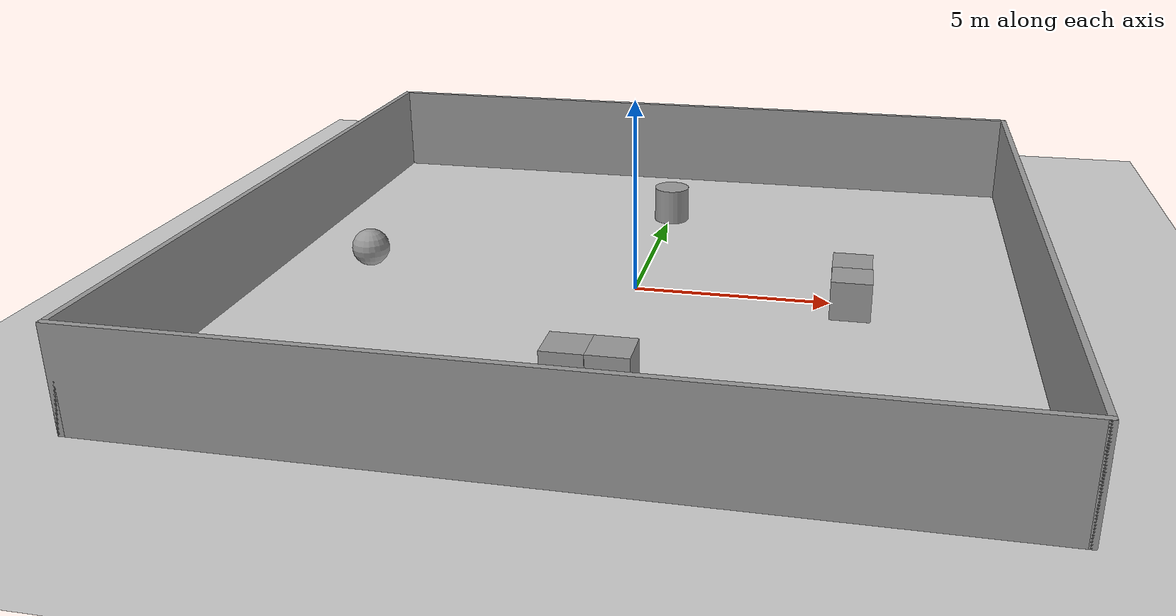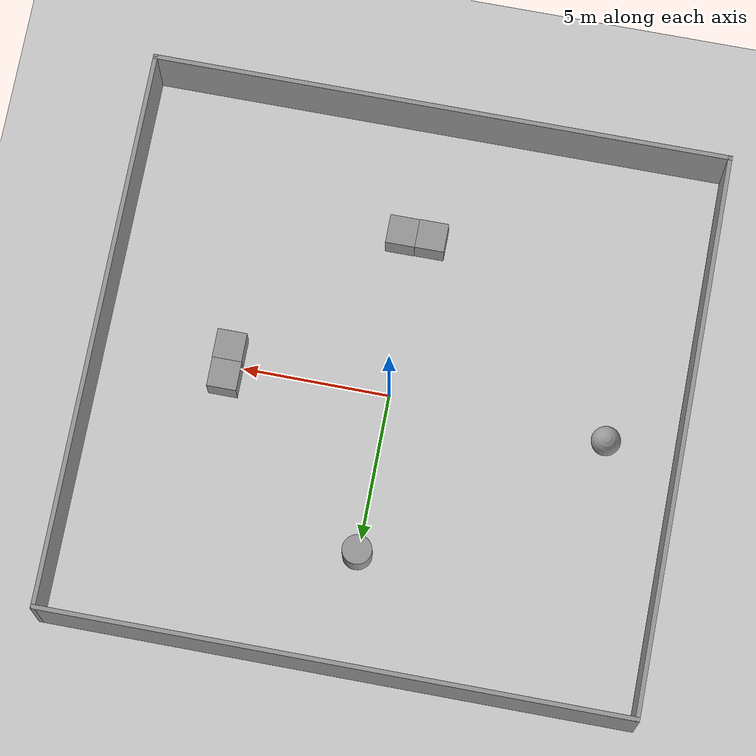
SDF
<sdf version="1.7">
 <world name="default">
  <light name="sun" type="directional">
   <pose>0 0 10 0 -0 0</pose>
   <diffuse>0.8 0.8 0.8 1</diffuse>
   <specular>0.2 0.2 0.2 1</specular>
   <attenuation>
    <range>1000</range>
    <constant>0.9</constant>
    <linear>0.01</linear>
    <quadratic>0.001</quadratic>
   </attenuation>
   <direction>-0.5 0.1 -0.9</direction>
   <spot><inner_angle>0</inner_angle><outer_angle>0</outer_angle><falloff>0</falloff></spot>
  </light>
  <model name="ground_plane">
   <static>1</static>
   <link name="link">
    <collision name="collision">
     <geometry><plane><normal>0 0 1</normal><size>100 100</size></plane></geometry>
     <surface>
      <contact><collide_bitmask>65535</collide_bitmask></contact>
      <friction><ode><mu>100</mu><mu2>50</mu2></ode></friction>
     </surface>
    </collision>
    <visual name="visual">
     <cast_shadows>0</cast_shadows>
     <geometry><plane><normal>0 0 1</normal><size>100 100</size></plane></geometry>
     <material>
      <script><uri>file://media/materials/scripts/gazebo.material</uri><name>Gazebo/Grey</name></script>
     </material>
    </visual>
   </link>
  </model>
  <gravity>0 0 -9.8</gravity>
  <magnetic_field>6e-06 2.3e-05 -4.2e-05</magnetic_field>
  <atmosphere type="adiabatic"/>
  <physics type="ode">
   <max_step_size>0.001</max_step_size>
   <real_time_factor>1</real_time_factor>
   <real_time_update_rate>1000</real_time_update_rate>
  </physics>
  <scene><ambient>0.4 0.4 0.4 1</ambient><background>0.7 0.7 0.7 1</background><shadows>1</shadows></scene>
  <audio><device>default</device></audio>
  <spherical_coordinates>
   <surface_model>EARTH_WGS84</surface_model>
   <latitude_deg>0</latitude_deg>
   <longitude_deg>0</longitude_deg>
   <elevation>0</elevation>
   <heading_deg>0</heading_deg>
  </spherical_coordinates>
  <model name="Untitled">
   <pose>0.009523 0.020676 0 0 -0 0</pose>
   <static>1</static>
   <link name="Wall_0">
    <collision name="Wall_0_Collision">
     <geometry><box><size>19.75 0.15 2.5</size></box></geometry>
     <pose>0 0 1.25 0 -0 0</pose>
    </collision>
    <visual name="Wall_0_Visual">
     <pose>0 0 1.25 0 -0 0</pose>
     <geometry><box><size>19.75 0.15 2.5</size></box></geometry>
     <material>
      <script><uri>file://media/materials/scripts/gazebo.material</uri><name>Gazebo/Grey</name></script>
      <ambient>1 1 1 1</ambient>
     </material>
     <meta><layer>0</layer></meta>
    </visual>
    <pose>-0 9.55 0 0 -0 3.14159</pose>
   </link>
   <link name="Wall_2">
    <collision name="Wall_2_Collision">
     <geometry><box><size>19.25 0.15 2.5</size></box></geometry>
     <pose>0 0 1.25 0 -0 0</pose>
    </collision>
    <visual name="Wall_2_Visual">
     <pose>0 0 1.25 0 -0 0</pose>
     <geometry><box><size>19.25 0.15 2.5</size></box></geometry>
     <material>
      <script><uri>file://media/materials/scripts/gazebo.material</uri><name>Gazebo/Grey</name></script>
      <ambient>1 1 1 1</ambient>
     </material>
     <meta><layer>0</layer></meta>
    </visual>
    <pose>-9.8 -0 0 0 -0 -1.5708</pose>
   </link>
   <link name="Wall_3">
    <collision name="Wall_3_Collision">
     <geometry><box><size>19.75 0.15 2.5</size></box></geometry>
     <pose>0 0 1.25 0 -0 0</pose>
    </collision>
    <visual name="Wall_3_Visual">
     <pose>0 0 1.25 0 -0 0</pose>
     <geometry><box><size>19.75 0.15 2.5</size></box></geometry>
     <material>
      <script><uri>file://media/materials/scripts/gazebo.material</uri><name>Gazebo/Grey</name></script>
      <ambient>1 1 1 1</ambient>
     </material>
     <meta><layer>0</layer></meta>
    </visual>
    <pose>-0 -9.55 0 0 -0 0</pose>
   </link>
   <link name="Wall_4">
    <collision name="Wall_4_Collision">
     <geometry><box><size>19.25 0.15 2.5</size></box></geometry>
     <pose>0 0 1.25 0 -0 0</pose>
    </collision>
    <visual name="Wall_4_Visual">
     <pose>0 0 1.25 0 -0 0</pose>
     <geometry><box><size>19.25 0.15 2.5</size></box></geometry>
     <material>
      <script><uri>file://media/materials/scripts/gazebo.material</uri><name>Gazebo/Grey</name></script>
      <ambient>1 1 1 1</ambient>
     </material>
     <meta><layer>0</layer></meta>
    </visual>
    <pose>9.8 -0 0 0 -0 1.5708</pose>
   </link>
   <static>1</static>
  </model>
  <model name="unit_box">
   <pose>5.49464 0.513816 0.499995 1e-05 -0 0.000278</pose>
   <static>1</static>
   <link name="link">
    <inertial>
     <mass>1</mass>
     <inertia>
      <ixx>0.166667</ixx>
      <ixy>0</ixy>
      <ixz>0</ixz>
      <iyy>0.166667</iyy>
      <iyz>0</iyz>
      <izz>0.166667</izz>
     </inertia>
    </inertial>
    <collision name="collision"><geometry><box><size>1 1 1</size></box></geometry></collision>
    <visual name="visual">
     <geometry><box><size>1 1 1</size></box></geometry>
     <material>
      <script><name>Gazebo/Grey</name><uri>file://media/materials/scripts/gazebo.material</uri></script>
     </material>
    </visual>
   </link>
  </model>
  <model name="unit_box_0">
   <pose>5.50891 -0.486179 0.5 0 -0 0.000271</pose>
   <static>1</static>
   <link name="link">
    <inertial>
     <mass>1</mass>
     <inertia>
      <ixx>0.166667</ixx>
      <ixy>0</ixy>
      <ixz>0</ixz>
      <iyy>0.166667</iyy>
      <iyz>0</iyz>
      <izz>0.166667</izz>
     </inertia>
    </inertial>
    <collision name="collision"><geometry><box><size>1 1 1</size></box></geometry></collision>
    <visual name="visual">
     <geometry><box><size>1 1 1</size></box></geometry>
     <material>
      <script><name>Gazebo/Grey</name><uri>file://media/materials/scripts/gazebo.material</uri></script>
     </material>
    </visual>
   </link>
  </model>
  <model name="unit_box_1">
   <pose>0.573324 -5.48013 0.499995 -1e-05 0 0.00048</pose>
   <static>1</static>
   <link name="link">
    <inertial>
     <mass>1</mass>
     <inertia>
      <ixx>0.166667</ixx>
      <ixy>0</ixy>
      <ixz>0</ixz>
      <iyy>0.166667</iyy>
      <iyz>0</iyz>
      <izz>0.166667</izz>
     </inertia>
    </inertial>
    <collision name="collision"><geometry><box><size>1 1 1</size></box></geometry></collision>
    <visual name="visual">
     <geometry><box><size>1 1 1</size></box></geometry>
     <material>
      <script><name>Gazebo/Grey</name><uri>file://media/materials/scripts/gazebo.material</uri></script>
     </material>
    </visual>
   </link>
  </model>
  <model name="unit_box_2">
   <pose>-0.42668 -5.49054 0.499995 1e-05 -0 0.000484</pose>
   <static>1</static>
   <link name="link">
    <inertial>
     <mass>1</mass>
     <inertia>
      <ixx>0.166667</ixx>
      <ixy>0</ixy>
      <ixz>0</ixz>
      <iyy>0.166667</iyy>
      <iyz>0</iyz>
      <izz>0.166667</izz>
     </inertia>
    </inertial>
    <collision name="collision"><geometry><box><size>1 1 1</size></box></geometry></collision>
    <visual name="visual">
     <geometry><box><size>1 1 1</size></box></geometry>
     <material>
      <script><name>Gazebo/Grey</name><uri>file://media/materials/scripts/gazebo.material</uri></script>
     </material>
    </visual>
   </link>
  </model>
  <model name="unit_cylinder">
   <pose>0.037917 5.54107 0.499993 -3e-06 -4e-06 -0</pose>
   <static>1</static>
   <link name="link">
    <inertial>
     <mass>1</mass>
     <inertia><ixx>0.145833</ixx><ixy>0</ixy><ixz>0</ixz><iyy>0.145833</iyy><iyz>0</iyz><izz>0.125</izz></inertia>
    </inertial>
    <collision name="collision">
     <geometry><cylinder><radius>0.5</radius><length>1</length></cylinder></geometry>
    </collision>
    <visual name="visual">
     <geometry><cylinder><radius>0.5</radius><length>1</length></cylinder></geometry>
     <material>
      <script><name>Gazebo/Grey</name><uri>file://media/materials/scripts/gazebo.material</uri></script>
     </material>
    </visual>
   </link>
  </model>
  <model name="unit_sphere">
   <pose>-7.38105 0.321849 0.5 0 -0 0</pose>
   <static>1</static>
   <link name="link">
    <inertial>
     <mass>1</mass>
     <inertia><ixx>0.1</ixx><ixy>0</ixy><ixz>0</ixz><iyy>0.1</iyy><iyz>0</iyz><izz>0.1</izz></inertia>
    </inertial>
    <collision name="collision"><geometry><sphere><radius>0.5</radius></sphere></geometry></collision>
    <visual name="visual">
     <geometry><sphere><radius>0.5</radius></sphere></geometry>
     <material>
      <script><name>Gazebo/Grey</name><uri>file://media/materials/scripts/gazebo.material</uri></script>
     </material>
    </visual>
   </link>
  </model>
 </world>
</sdf>
